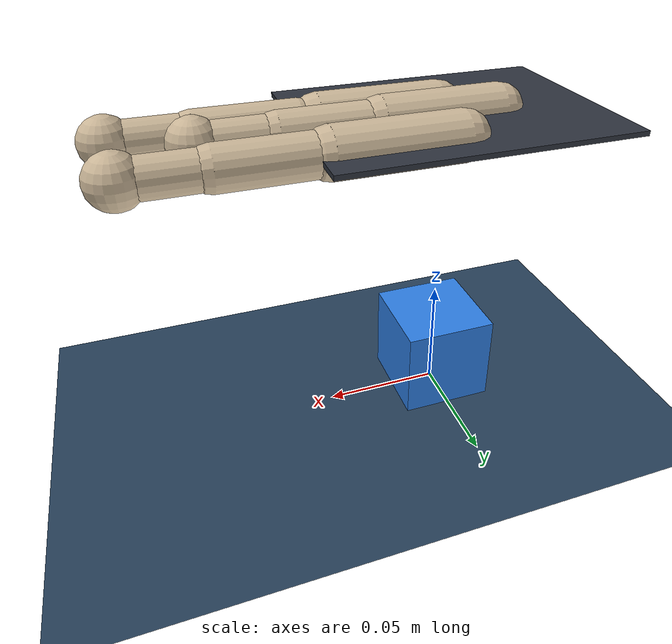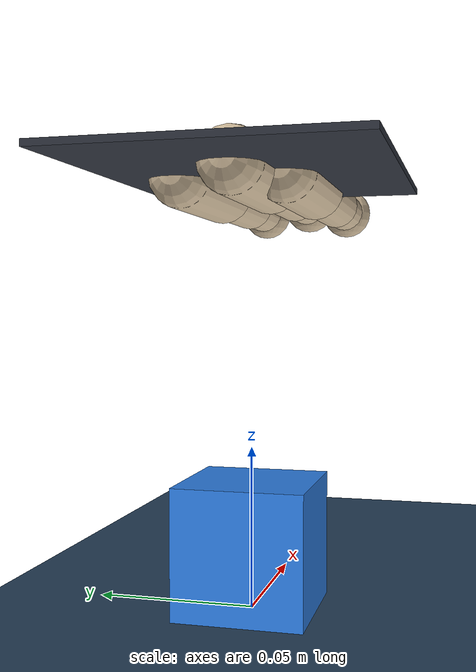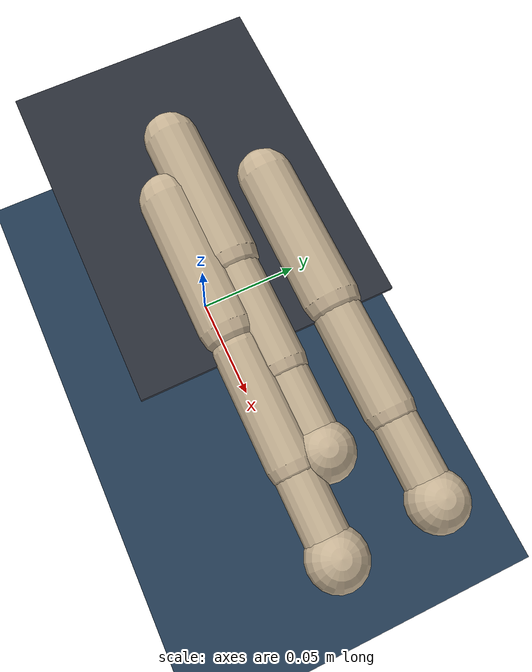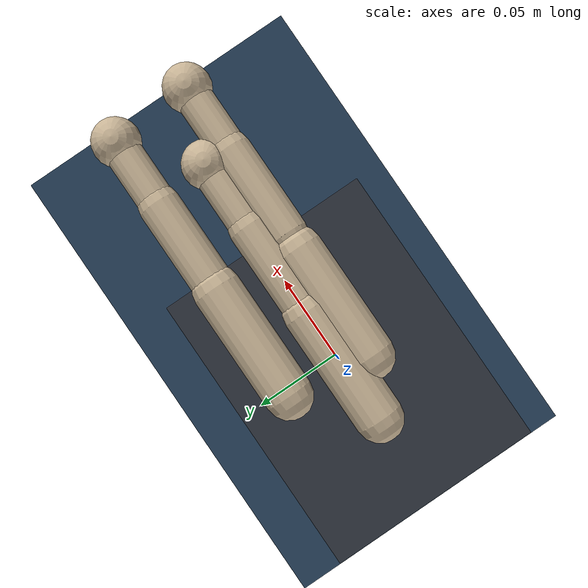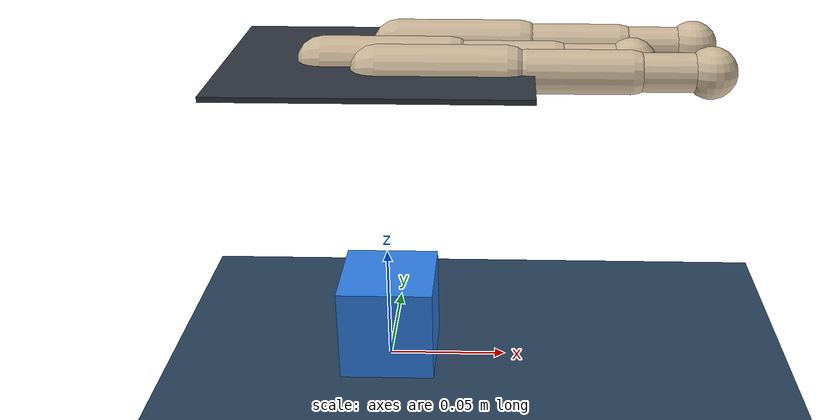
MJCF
<mujoco model="scene_cube_tp0d0079p0d0285p0d0000_ip0d0050n0d0053p0d0000_mn0d0002p0d0197p0d0072">
  <compiler angle="radian" autolimits="true" />
  <option timestep="0.002" gravity="0 0 -9.81" integrator="implicitfast" />
  <visual>
    <headlight ambient=".4 .4 .4" diffuse=".8 .8 .8" specular="0.1 0.1 0.1" />
    <map znear=".01" />
    <quality shadowsize="2048" />
    <global elevation="-15" />
  </visual>
  <default>
    <geom friction="1.0 0.05 0.001" solref="0.01 1" solimp="0.95 0.99 0.001" />
    <motor ctrlrange="-1 1" ctrllimited="true" />
    <default class="pose">
      <joint damping="2.0" armature="0.01" />
      <position kp="4000" kv="100" forcerange="-1000 1000" />
    </default>
    <default class="ctrl">
      <joint damping="0.5" armature="0.001" />
      <position kp="30" kv="0.5" gear="1" forcerange="-10 10" ctrlrange="-1 1" />
    </default>
  </default>
  <asset>
    <texture type="skybox" builtin="gradient" rgb1="0.3 0.5 0.7" rgb2="0 0 0" width="512" height="3072" />
    <texture type="2d" name="groundplane" builtin="checker" mark="edge" rgb1="0.2 0.3 0.4" rgb2="0.1 0.2 0.3" markrgb="0.8 0.8 0.8" width="300" height="300" />
    <material name="groundplane" texture="groundplane" texuniform="true" texrepeat="5 5" reflectance="0.2" />
    <texture name="grid" type="2d" builtin="checker" rgb1="0.15 0.15 0.15" rgb2="0.25 0.25 0.25" width="256" height="256" />
    <material name="table_mat" texture="grid" texrepeat="3 3" reflectance="0.2" />
    <material name="palm_mat" rgba="0.18 0.2 0.24 1" />
    <material name="finger_mat" rgba="0.8 0.72 0.6 1" />
    <material name="object_mat" rgba="0.18 0.5 0.9 1" />
  </asset>
  <worldbody>
    <light pos="0 0 1.5" dir="0 0 -1" directional="true" diffuse=".6 .6 .6" specular=".2 .2 .2" />
    <light pos="0.5 0.5 1.0" dir="-1 -1 -1" directional="true" diffuse=".4 .4 .4" specular=".1 .1 .1" />
    <geom name="floor" type="plane" size="1.5 1.5 0.1" material="groundplane" />
    <body name="cube" pos="0.000000 0.000000 0.020000">
      <freejoint />
      <geom type="box" size="0.020000 0.020000 0.020000" density="500" material="object_mat" />
    </body>
    <body gravcomp="1" name="palm_pose" pos="0 0 0.134">
      <joint class="pose" name="palm_px" type="slide" axis="1 0 0" range="-0.20 0.20" />
      <joint class="pose" name="palm_py" type="slide" axis="0 1 0" range="-0.20 0.20" />
      <joint class="pose" name="palm_pz" type="slide" axis="0 0 1" range="-0.15 0.35" />
      <joint class="pose" name="palm_rx" type="hinge" axis="1 0 0" range="-1.57 1.57" />
      <joint class="pose" name="palm_ry" type="hinge" axis="0 1 0" range="-1.57 1.57" />
      <joint class="pose" name="palm_rz" type="hinge" axis="0 0 1" range="-3.14 3.14" />
      <geom type="box" size="0.06 0.045 0.001" material="palm_mat" />
      <body name="thumb_mount" pos="-0.022137 0.000524 0">
        <inertial pos="0 0 0" mass="0.001" diaginertia="1e-6 1e-6 1e-6" />
        <body name="thumb_yaw_frame">
          <inertial pos="0 0 0" mass="0.001" diaginertia="1e-6 1e-6 1e-6" />
          <joint class="ctrl" name="thumb_yaw" type="hinge" axis="1 0 0" range="-1.1 1.1" />
          <body name="thumb_mcp_frame">
            <joint class="ctrl" name="thumb_mcp" type="hinge" axis="0 1 0" range="0 3.14" />
            <geom type="capsule" fromto="0 0 0 0.05 0 0" size="0.010" material="finger_mat" />
            <body name="thumb_len_frame" pos="0.05 0 0">
              <geom type="capsule" fromto="0 0 0 0.04 0 0" size="0.0085" material="finger_mat" />
              <body name="thumb_pip_frame" pos="0.04 0 0">
                <joint class="ctrl" name="thumb_pip" type="hinge" axis="0 1 0" range="-1.2 0.5" />
                <geom type="capsule" fromto="0 0 0 0.03 0 0" size="0.0075" material="finger_mat" />
                <body name="thumb_tip" pos="0.03 0 0">
                  <geom type="sphere" size="0.010" material="finger_mat" />
                </body>
              </body>
            </body>
          </body>
        </body>
      </body>
      <body name="index_mount" pos="0.00498 0.024663 0">
        <inertial pos="0 0 0" mass="0.001" diaginertia="1e-6 1e-6 1e-6" />
        <body name="index_yaw_frame">
          <inertial pos="0 0 0" mass="0.001" diaginertia="1e-6 1e-6 1e-6" />
          <joint class="ctrl" name="index_yaw" type="hinge" axis="1 0 0" range="-1.1 1.1" />
          <body name="index_mcp_frame">
            <joint class="ctrl" name="index_mcp" type="hinge" axis="0 1 0" range="0 2.5" />
            <geom type="capsule" fromto="0 0 0 0.05 0 0" size="0.010" material="finger_mat" />
            <body name="index_len_frame" pos="0.05 0 0">
              <geom type="capsule" fromto="0 0 0 0.04 0 0" size="0.0085" material="finger_mat" />
              <body name="index_pip_frame" pos="0.04 0 0">
                <joint class="ctrl" name="index_pip" type="hinge" axis="0 1 0" range="-1.2 1.57" />
                <geom type="capsule" fromto="0 0 0 0.03 0 0" size="0.0075" material="finger_mat" />
                <body name="index_tip" pos="0.03 0 0">
                  <geom type="sphere" size="0.010" material="finger_mat" />
                </body>
              </body>
            </body>
          </body>
        </body>
      </body>
      <body name="middle_mount" pos="-0.000231 -0.010302 0">
        <inertial pos="0 0 0" mass="0.001" diaginertia="1e-6 1e-6 1e-6" />
        <body name="middle_yaw_frame">
          <inertial pos="0 0 0" mass="0.001" diaginertia="1e-6 1e-6 1e-6" />
          <joint class="ctrl" name="middle_yaw" type="hinge" axis="1 0 0" range="-1.1 1.1" />
          <body name="middle_mcp_frame">
            <joint class="ctrl" name="middle_mcp" type="hinge" axis="0 1 0" range="0 2.5" />
            <geom type="capsule" fromto="0 0 0 0.05 0 0" size="0.010" material="finger_mat" />
            <body name="middle_len_frame" pos="0.057182 0 0">
              <geom type="capsule" fromto="0 0 0 0.04 0 0" size="0.0085" material="finger_mat" />
              <body name="middle_pip_frame" pos="0.04 0 0">
                <joint class="ctrl" name="middle_pip" type="hinge" axis="0 1 0" range="-1.2 1.57" />
                <geom type="capsule" fromto="0 0 0 0.03 0 0" size="0.0075" material="finger_mat" />
                <body name="middle_tip" pos="0.03 0 0">
                  <geom type="sphere" size="0.010" material="finger_mat" />
                </body>
              </body>
            </body>
          </body>
        </body>
      </body>
    </body>
  </worldbody>
  <actuator>
    <position class="pose" name="a_palm_px" joint="palm_px" ctrlrange="-0.20 0.20" />
    <position class="pose" name="a_palm_py" joint="palm_py" ctrlrange="-0.20 0.20" />
    <position class="pose" name="a_palm_pz" joint="palm_pz" ctrlrange="-0.15 0.35" />
    <position class="pose" name="a_palm_rx" joint="palm_rx" ctrlrange="-1.57 1.57" />
    <position class="pose" name="a_palm_ry" joint="palm_ry" ctrlrange="-1.57 1.57" />
    <position class="pose" name="a_palm_rz" joint="palm_rz" ctrlrange="-3.14 3.14" />
    <position class="ctrl" name="a_thumb_yaw" joint="thumb_yaw" ctrlrange="-1.1 1.1" />
    <position class="ctrl" name="a_thumb_mcp" joint="thumb_mcp" ctrlrange="0 3.14" />
    <position class="ctrl" name="a_thumb_pip" joint="thumb_pip" ctrlrange="-1.2 0.5" />
    <position class="ctrl" name="a_index_yaw" joint="index_yaw" ctrlrange="-1.1 1.1" />
    <position class="ctrl" name="a_index_mcp" joint="index_mcp" ctrlrange="0 2.5" />
    <position class="ctrl" name="a_index_pip" joint="index_pip" ctrlrange="-1.2 1.57" />
    <position class="ctrl" name="a_middle_yaw" joint="middle_yaw" ctrlrange="-1.1 1.1" />
    <position class="ctrl" name="a_middle_mcp" joint="middle_mcp" ctrlrange="0 2.5" />
    <position class="ctrl" name="a_middle_pip" joint="middle_pip" ctrlrange="-1.2 1.57" />
  </actuator>
  <keyframe>
    <key name="open" qpos="&#10;        0 0 0.02 1 0 0 0 0.02 0 0 0 0 0 0 2 -0.707 0 1.25 1 0 1.25 1&#10;      " ctrl="&#10;        0.02 0 0 0 0 0 0 2 -0.707 0 1.25 1 0 1.25 1&#10;      " />
    <key name="foundational" qpos="&#10;        -0.001534769659 -0.006441758376 0.02470103335 0.9728429784 0.05270933223 0.04665240831 -0.2205035568 0.02000000755 3.2292527e-09 -0.0004081206196 1.478946359e-06 -3.66584266e-06 -7.495448229e-09 0.0258831535 2.070568276 -1.12944406 -0.322151795 1.240707291 1.198259678 -0.1456973451 1.354151301 0.9832834095&#10;      " ctrl="&#10;        0.02 0 0 0 0 0 -0.0400194047 1.927054644 -1.159485554 -0.341626887 1.276968973 1.204786573 -0.06035565692 1.468609621 1.007721083&#10;      " />
  </keyframe>
</mujoco>
